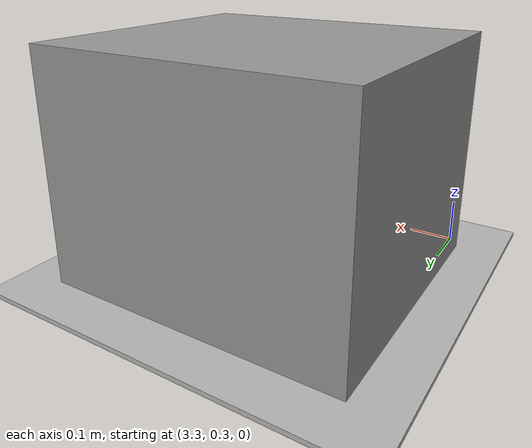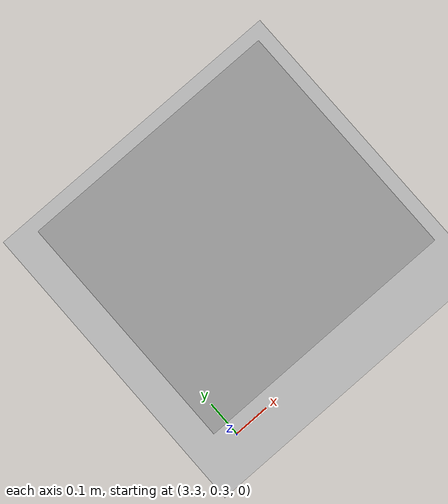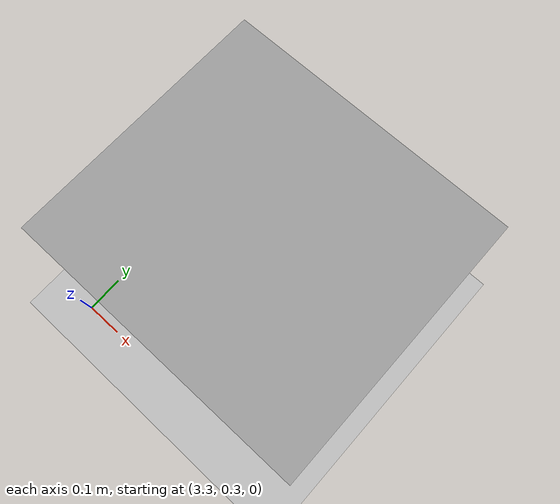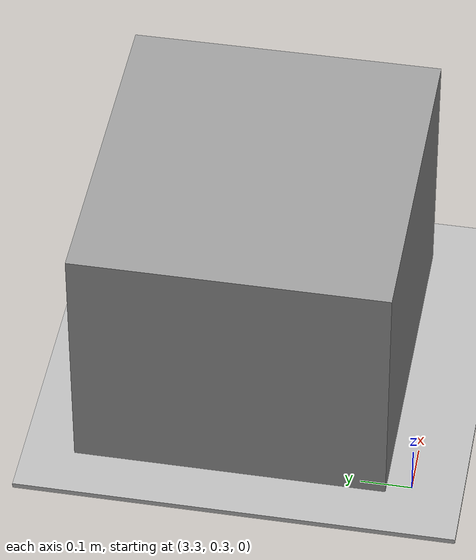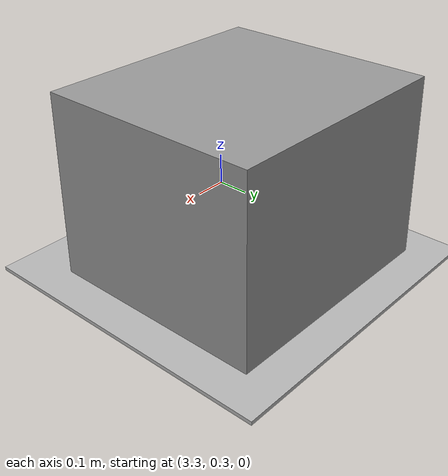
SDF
<sdf version="1.6">
 <world name="default">
  <light name="sun" type="directional">
   <pose>0 0 10 0 -0 0</pose>
   <diffuse>0.8 0.8 0.8 1</diffuse>
   <specular>0.1 0.1 0.1 1</specular>
   <attenuation>
    <range>1000</range>
    <constant>0.9</constant>
    <linear>0.01</linear>
    <quadratic>0.001</quadratic>
   </attenuation>
   <direction>-0.5 0.5 -1</direction>
  </light>
  <model name="ground_plane">
   <static>1</static>
   <link name="link">
    <collision name="collision">
     <geometry><plane><normal>0 0 1</normal><size>100 100</size></plane></geometry>
     <surface><friction><ode><mu>100</mu><mu2>50</mu2></ode></friction></surface>
    </collision>
    <visual name="visual">
     <cast_shadows>0</cast_shadows>
     <geometry><plane><normal>0 0 1</normal><size>100 100</size></plane></geometry>
     <material>
      <script><uri>file://media/materials/scripts/gazebo.material</uri><name>Gazebo/Grey</name></script>
     </material>
    </visual>
   </link>
  </model>
  <gravity>0 0 -9.8</gravity>
  <magnetic_field>6e-06 2.3e-05 -4.2e-05</magnetic_field>
  <atmosphere type="adiabatic"/>
  <physics name="default_physics" default="0" type="ode">
   <max_step_size>0.001</max_step_size>
   <real_time_factor>1</real_time_factor>
   <real_time_update_rate>1000</real_time_update_rate>
  </physics>
  <scene><ambient>0.4 0.4 0.4 1</ambient><background>0.7 0.7 0.7 1</background><shadows>1</shadows></scene>
  <spherical_coordinates>
   <surface_model>EARTH_WGS84</surface_model>
   <latitude_deg>0</latitude_deg>
   <longitude_deg>0</longitude_deg>
   <elevation>0</elevation>
   <heading_deg>0</heading_deg>
  </spherical_coordinates>
  <model name="path_floor">
   <pose>0.964172 -2.51588 0.004521 0 -0 0</pose>
   <static>1</static>
   <link name="chair_link">
    <collision name="floor_collision"><geometry><box><size>1 1 1</size></box></geometry></collision>
    <visual name="path_mesh">
     <geometry><mesh><uri>model://path_floor/meshes/path_floor.dae</uri><scale>1 1 1</scale></mesh></geometry>
    </visual>
   </link>
  </model>
  <model name="unit_box_0">
   <pose>3.60827 0.655275 0.259675 0 -0 1e-06</pose>
   <link name="link">
    <inertial>
     <mass>1</mass>
     <inertia>
      <ixx>0.166667</ixx>
      <ixy>0</ixy>
      <ixz>0</ixz>
      <iyy>0.166667</iyy>
      <iyz>0</iyz>
      <izz>0.166667</izz>
     </inertia>
    </inertial>
    <collision name="collision">
     <geometry><box><size>0.672918 0.614658 0.519349</size></box></geometry>
    </collision>
    <visual name="visual">
     <geometry><box><size>0.672918 0.614658 0.519349</size></box></geometry>
     <material>
      <script><name>Gazebo/Grey</name><uri>file://media/materials/scripts/gazebo.material</uri></script>
     </material>
    </visual>
   </link>
  </model>
 </world>
</sdf>
